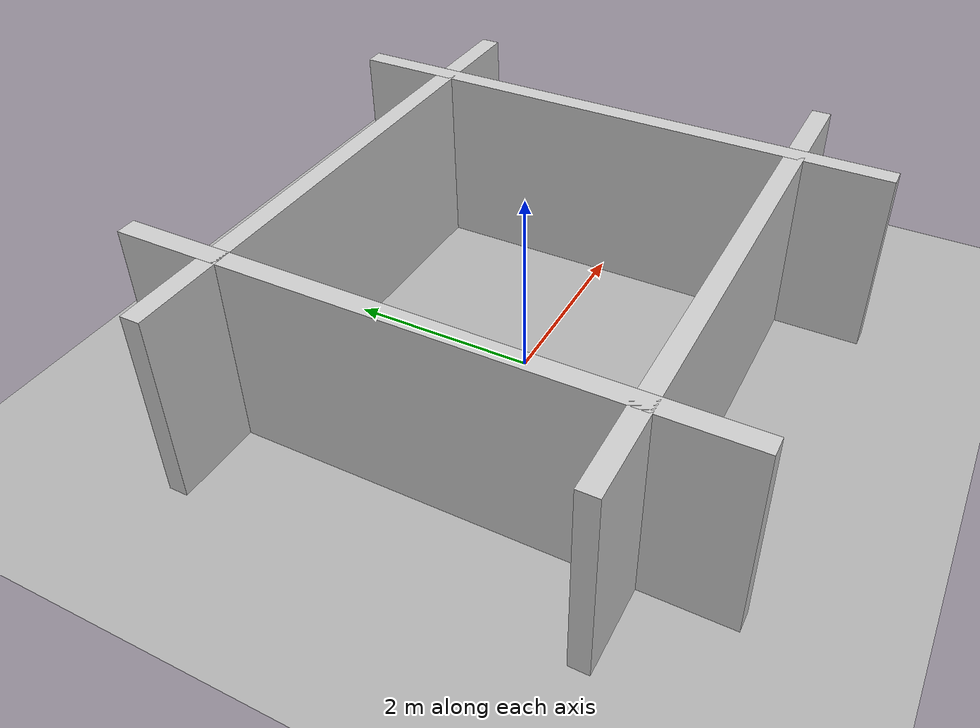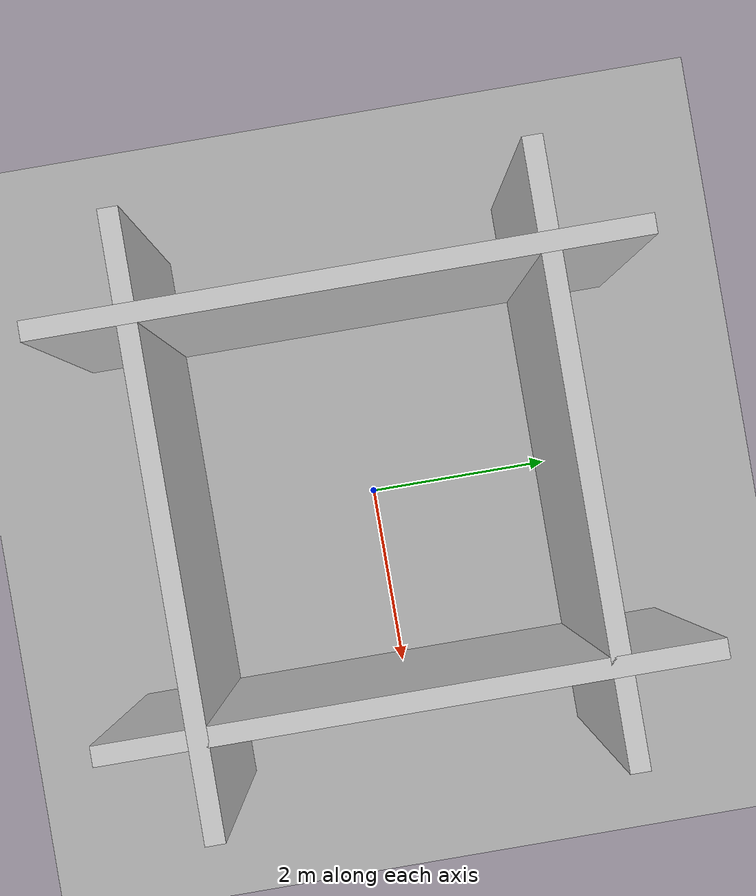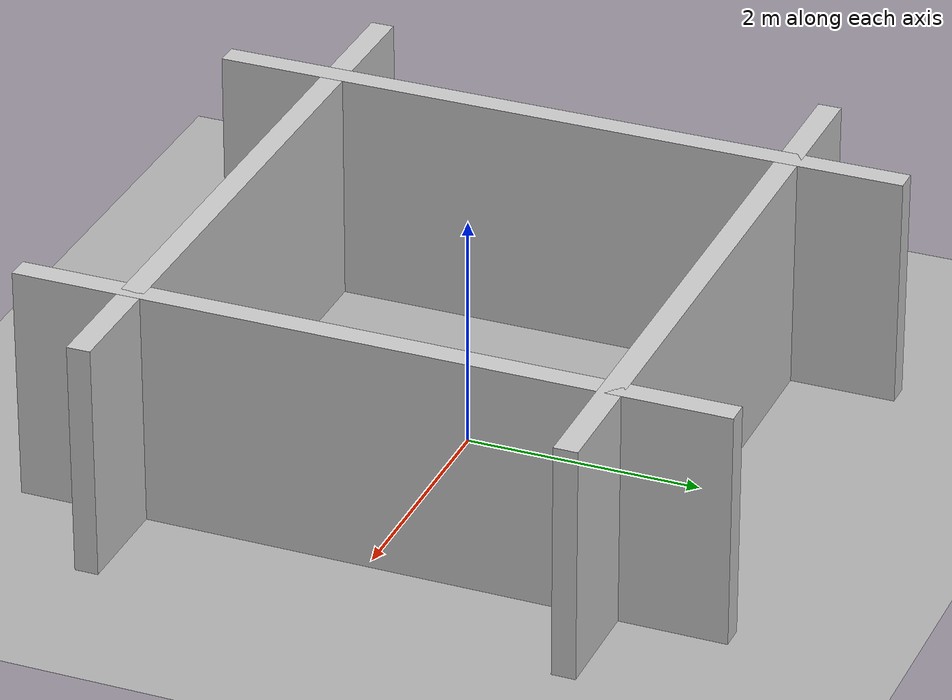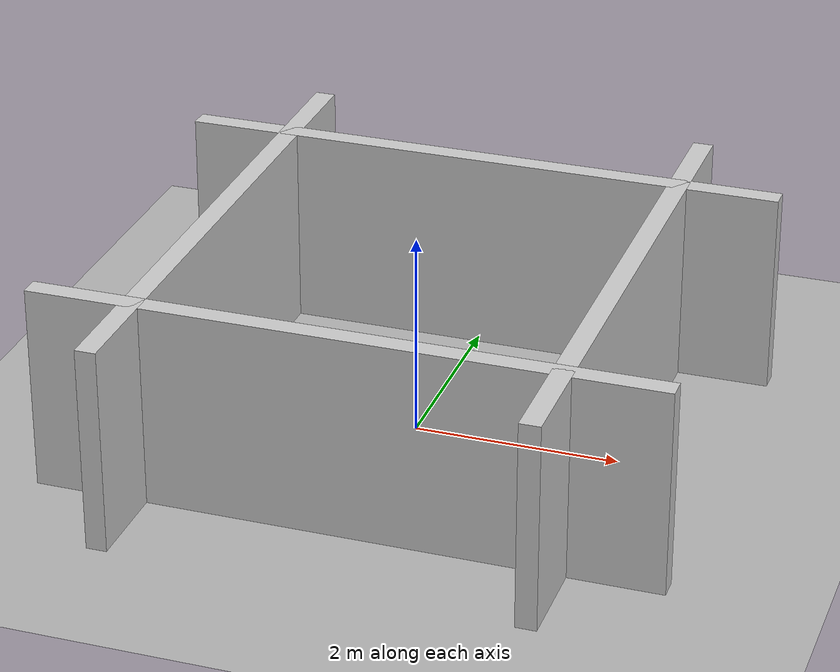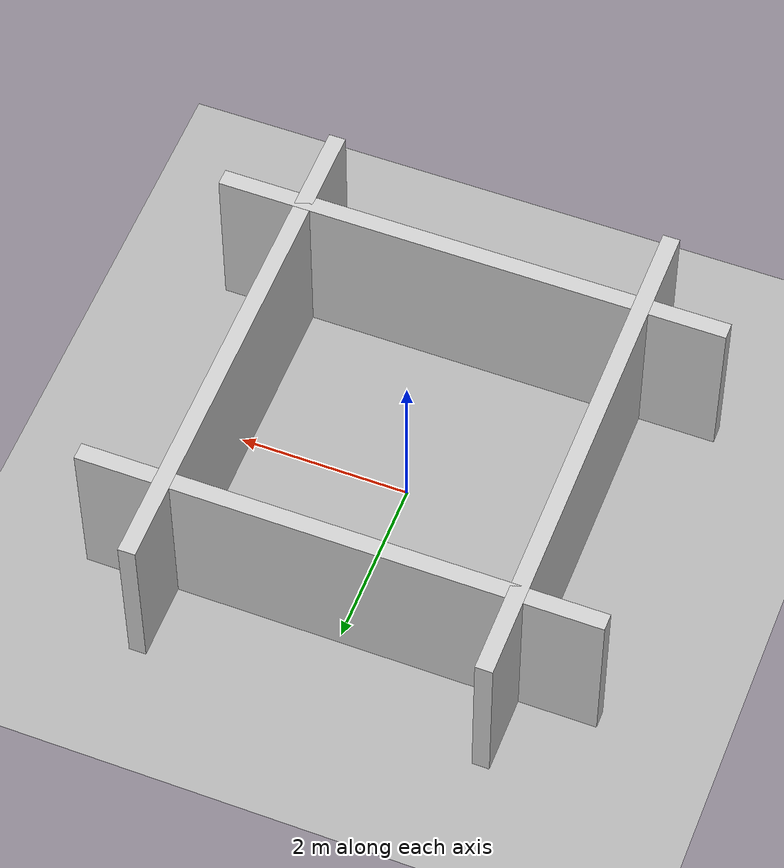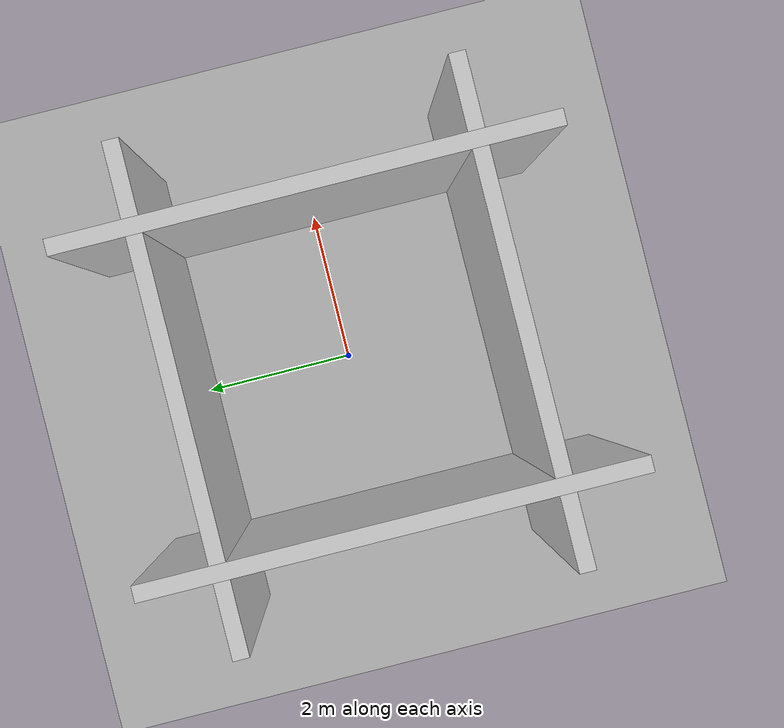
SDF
<?xml version="1.0" ?>
<sdf version="1.6">
  <world name="default">
    <plugin filename="gz-sim-physics-system"
            name="gz::sim::systems::Physics"/>
    <plugin filename="gz-sim-sensors-system"
            name="gz::sim::systems::Sensors">
      <render_engine>ogre2</render_engine>
    </plugin>
    <plugin filename="gz-sim-user-commands-system"
            name="gz::sim::systems::UserCommands"/>
    <plugin filename="gz-sim-scene-broadcaster-system"
            name="gz::sim::systems::SceneBroadcaster"/>
    <light type="directional" name="sun">
      <cast_shadows>true</cast_shadows>
      <pose>0 0 10 0 0 0</pose>
      <diffuse>0.8 0.8 0.8 1</diffuse>
      <specular>0.2 0.2 0.2 1</specular>
      <direction>-0.5 0.1 -0.9</direction>
    </light>
    <model name="ground_plane">
      <static>true</static>
      <link name="link">
        <collision name="collision">
          <geometry><plane><normal>0 0 1</normal></plane></geometry>
        </collision>
        <visual name="visual">
          <geometry><plane><normal>0 0 1</normal></plane></geometry>
          <material>
            <ambient>0.7 0.7 0.7 1</ambient>
            <diffuse>0.7 0.7 0.7 1</diffuse>
          </material>
        </visual>
      </link>
    </model>
    <model name="wall_north">
      <static>true</static>
      <pose>2 0 1.0 0 0 0</pose>
      <link name="link">
        <collision name="collision">
          <geometry><box><size>0.2 6 2</size></box></geometry>
        </collision>
        <visual name="visual">
          <geometry><box><size>0.2 6 2</size></box></geometry>
          <material>
            <ambient>0.8 0.8 0.8 1</ambient>
            <diffuse>0.8 0.8 0.8 1</diffuse>
          </material>
        </visual>
      </link>
    </model>
    <model name="wall_south">
      <static>true</static>
      <pose>-2 0 1.0 0 0 0</pose>
      <link name="link">
        <collision name="collision">
          <geometry><box><size>0.2 6 2</size></box></geometry>
        </collision>
        <visual name="visual">
          <geometry><box><size>0.2 6 2</size></box></geometry>
          <material>
            <ambient>0.8 0.8 0.8 1</ambient>
            <diffuse>0.8 0.8 0.8 1</diffuse>
          </material>
        </visual>
      </link>
    </model>
    <model name="wall_east">
      <static>true</static>
      <pose>0 2 1.0 0 0 0</pose>
      <link name="link">
        <collision name="collision">
          <geometry><box><size>6 0.2 2</size></box></geometry>
        </collision>
        <visual name="visual">
          <geometry><box><size>6 0.2 2</size></box></geometry>
          <material>
            <ambient>0.8 0.8 0.8 1</ambient>
            <diffuse>0.8 0.8 0.8 1</diffuse>
          </material>
        </visual>
      </link>
    </model>
    <model name="wall_west">
      <static>true</static>
      <pose>0 -2 1.0 0 0 0</pose>
      <link name="link">
        <collision name="collision">
          <geometry><box><size>6 0.2 2</size></box></geometry>
        </collision>
        <visual name="visual">
          <geometry><box><size>6 0.2 2</size></box></geometry>
          <material>
            <ambient>0.8 0.8 0.8 1</ambient>
            <diffuse>0.8 0.8 0.8 1</diffuse>
          </material>
        </visual>
      </link>
    </model>
  </world>
</sdf>
